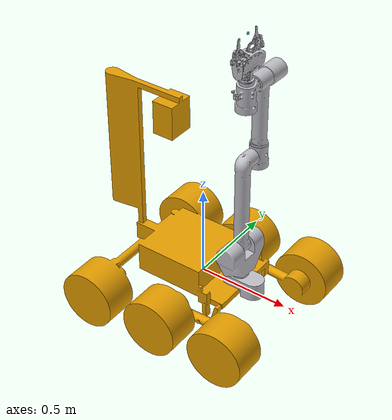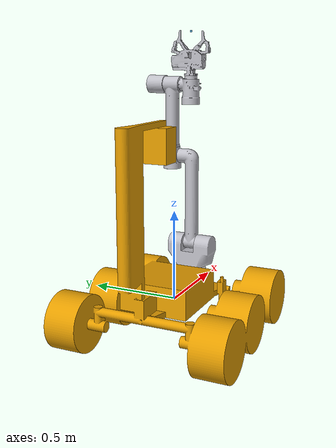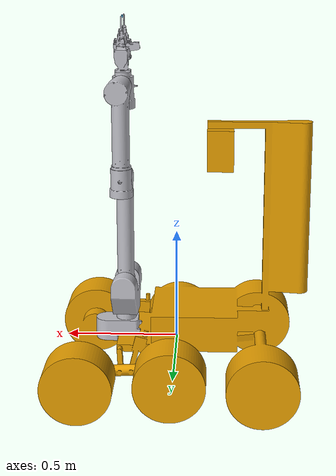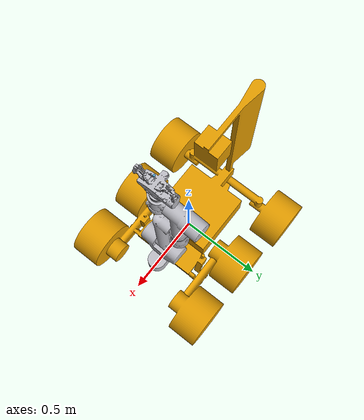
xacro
<?xml version="1.0"?>

<!--
Urdf for the rover of the DAM Robotics Rover triple bogie system.
-->

<robot name="rover" xmlns:xacro="https://ros.org/wiki/xacro">
    <xacro:macro name="rover" params="name attachment:=arm">
        <!-- Includes (material libraries, etc) -->
        <xacro:include filename="$(find rover_arm_urdf)/urdf/rover2_arm.urdf.xacro" />
        <xacro:include filename="rover_body.urdf.xacro"/>

        <!-- Link Chasis with bogies and tower -->
        <xacro:rover_body name="rover_body">
        </xacro:rover_body>

        <!-- Link Arm or Scimech-->
        <xacro:if value="${attachment== 'arm'}">
            <xacro:rover2_arm parent="rover_base_origin" >
                <origin rpy= "0.0 0.0 0.0" xyz="0.175735 0 0.03175"/>
            </xacro:rover2_arm>
        </xacro:if>

        <xacro:if value="${attachment == 'science'}">

        </xacro:if>

            <!-- Arm option for gripper -->
    </xacro:macro>

    <xacro:rover name="rover" attachment="arm"/>

</robot>

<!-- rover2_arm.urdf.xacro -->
<robot name="rover2_arm" xmlns:xacro="http://www.ros.org/wiki/xacro">
  <xacro:macro name="rover2_arm" params="parent *origin name:=rover_arm" >

    <link name="${name}_base_link">
      <inertial>
        <origin xyz="0.08371 -0.000083675 0.03944" rpy="0 0 -1.5708"/>
        <mass value="1.9803212654096218"/>
        <inertia ixx="0.003734" iyy="0.007149" izz="0.007073" ixy="1.085e-06" iyz="-3.675e-06" ixz="0.001344"/>
      </inertial>
      <visual>
        <origin xyz="0 0 0" rpy="0 0 -1.5708"/>
        <geometry>
          <mesh filename="package://rover_arm_urdf/urdf/stl_files/mr2526-arm-Base_Link-URDF_Mass.stl" scale="0.001 0.001 0.001"/>
        </geometry>
        <material name="silver"/>
      </visual>
      <collision>
        <origin xyz="0 0 0" rpy="0 0 -1.5708"/>
        <geometry>
          <mesh filename="package://rover_arm_urdf/urdf/stl_files/mr2526-arm-Base_Collision.stl" scale="0.001 0.001 0.001"/>
        </geometry>
      </collision>
    </link>

    <link name="${name}_shoulder">
      <inertial>
        <origin xyz="0.0094258 0.0003306 0.11444" rpy="0 0 0"/>
        <mass value="4.597426515663195"/>
        <inertia ixx="0.017924" iyy="0.03421" izz="0.026905" ixy="0.000571" iyz="3.3e-05" ixz="0.000896"/>
      </inertial>
      <visual>
        <origin xyz="0.0 -0.055 -0.0865" rpy="0 0 0"/>
        <geometry>
          <mesh filename="package://rover_arm_urdf/urdf/stl_files/mr2526-arm-Shoulder_Link-URDF_Mass.stl" scale="0.001 0.001 0.001"/>
        </geometry>
        <material name="silver"/>
      </visual>
      <collision>
        <origin xyz="0.0 -0.055 -0.0865" rpy="0 0 0"/>
        <geometry>
          <mesh filename="package://rover_arm_urdf/urdf/stl_files/mr2526-arm-Shoulder_Collision.stl" scale="0.001 0.001 0.001"/>
        </geometry>
      </collision>
    </link>

    <link name="${name}_long_arm">
      <inertial>
        <origin xyz="-0.082265 -0.002920 0.304191" rpy="0 0 0"/>
        <mass value="1.931219575863863"/>
        <inertia ixx="0.102866" iyy="0.10401" izz="0.003018" ixy="-4.1e-05" iyz="0.00216" ixz="0.006075"/>
      </inertial>
      <visual>
        <origin xyz="-0.064949 -0.052429 -0.237943" rpy="0 0 0"/>
        <geometry>
          <mesh filename="package://rover_arm_urdf/urdf/stl_files/mr2526-arm-Long_Arm_Link-URDF_Mass.stl" scale="0.001 0.001 0.001"/>
        </geometry>
        <material name="silver"/>
      </visual>
      <collision>
        <origin xyz="-0.064949 -0.052429 -0.237943" rpy="0 0 0"/>
        <geometry>
          <mesh filename="package://rover_arm_urdf/urdf/stl_files/mr2526-arm-Long_Arm_Collision.stl" scale="0.001 0.001 0.001"/>
        </geometry>
      </collision>
    </link>

    <link name="${name}_elbow_roll">
      <inertial>
        <origin xyz="0.06296 -0.001884  0.002448" rpy="0 0 0"/>
        <mass value="1.6182387209715599"/>
        <inertia ixx="0.002582" iyy="0.002773" izz="0.001869" ixy="-5e-06" iyz="3.2e-05" ixz="7e-05"/>
      </inertial>
      <visual>
        <origin xyz="0.059204 -0.057343 -0.739926" rpy="0 0 0"/>
        <geometry>
          <mesh filename="package://rover_arm_urdf/urdf/stl_files/mr2526-arm-Elbow_Roll_Link-URDF_Mass.stl" scale="0.001 0.001 0.001"/>
        </geometry>
        <material name="silver"/>
      </visual>
      <collision>
        <origin xyz="0.059204 -0.057343 -0.739926" rpy="0 0 0"/>
        <geometry>
          <mesh filename="package://rover_arm_urdf/urdf/stl_files/mr2526-arm-Elbow_Roll_Collision.stl" scale="0.001 0.001 0.001"/>
        </geometry>
      </collision>
    </link>

    <link name="${name}_short_arm">
      <inertial>
        <origin xyz="-0.019578 -0.0008965 0.308656" rpy="0 0 0"/>
        <mass value="2.3532339025644338"/>
        <inertia ixx="0.024841" iyy="0.029375" izz="0.007124" ixy="-0.000127" iyz="8.7e-05" ixz="0.001874"/>
      </inertial>
      <visual>
        <origin xyz="0.124153 -0.059914 -0.790926" rpy="0 0 0"/>
        <geometry>
          <mesh filename="package://rover_arm_urdf/urdf/stl_files/mr2526-arm-Short_Arm_Link-URDF_Mass.stl" scale="0.001 0.001 0.001"/>
        </geometry>
        <material name="silver"/>
      </visual>
      <collision>
        <origin xyz="0.124153 -0.059914 -0.790926" rpy="0 0 0"/>
        <geometry>
          <mesh filename="package://rover_arm_urdf/urdf/stl_files/mr2526-arm-Short_Arm_Collision.stl" scale="0.001 0.001 0.001"/>
        </geometry>
      </collision>
    </link>

    <link name="${name}_wrist_roll">
      <inertial>
        <origin xyz="0.048557 0.002168 -0.03599" rpy="0 0 0"/>
        <mass value="1.3442681899530171"/>
        <inertia ixx="0.002484" iyy="0.002597" izz="0.001636" ixy="8e-06" iyz="4.8e-05" ixz="8.1e-05"/>
      </inertial>
      <visual>
        <origin xyz="0.059204 -0.057343 -1.139326" rpy="0 0 0"/>
        <geometry>
          <mesh filename="package://rover_arm_urdf/urdf/stl_files/mr2526-arm-Wrist_Roll_Link-URDF-Mass.stl" scale="0.001 0.001 0.001"/>
        </geometry>
        <material name="silver"/>
      </visual>
      <collision>
        <origin xyz="0.059204 -0.057343 -1.139326" rpy="0 0 0"/>
        <geometry>
          <mesh filename="package://rover_arm_urdf/urdf/stl_files/mr2526-arm-Wrist_Roll_Collision.stl" scale="0.001 0.001 0.001"/>
        </geometry>
      </collision>
    </link>

    <link name="${name}_tool0">
      <inertial>
        <origin xyz="-0.00042542 0.00016296 0.016355" rpy="0 0 0"/>
        <mass value="0.09744608224670866"/>
        <inertia ixx="3.3e-05" iyy="3.3e-05" izz="5.6e-05" ixy="0.0" iyz="0.0" ixz="0.0"/>
      </inertial>
      <visual>
        <origin xyz="0.009243 -0.055366 -1.165364" rpy="0 0 0"/>
        <geometry>
          <mesh filename="package://rover_arm_urdf/urdf/stl_files/mr2526-arm-Tool0-URDF_Mass.stl" scale="0.001 0.001 0.001"/>
        </geometry>
        <material name="silver"/>
      </visual>
      <collision>
        <origin xyz="0.009243 -0.055366 -1.165364" rpy="0 0 0"/>
        <geometry>
          <mesh filename="package://rover_arm_urdf/urdf/stl_files/mr2526-arm-Tool0_Collision.stl" scale="0.001 0.001 0.001"/>
        </geometry>
      </collision>
    </link>

    <link name="${name}_gripper">
      <inertial>
        <origin xyz="0.00054881 -0.003385 0.09155" rpy="0 0 0"/>
        <mass value="1.436142089281915"/>
        <inertia ixx="0.004268" iyy="0.006284" izz="0.003365" ixy="-0.000106" iyz="0.000102" ixz="0.00012"/>
      </inertial>
      <visual>
        <origin xyz="0.01459598 -0.05420133 -1.189494" rpy="0 0 0.097633718357"/>
        <geometry>
          <mesh filename="package://rover_arm_urdf/urdf/stl_files/mr2526-arm-Gripper-2019-URDF_Mass.stl" scale="0.001 0.001 0.001"/>
        </geometry>
        <material name="silver"/>
      </visual>
      <collision>
        <origin xyz="0 0 0" rpy="1.570796632679 0 3.141592653589793"/>
        <geometry>
          <mesh filename="package://rover_arm_urdf/urdf/stl_files/arm_1819_gripper.stl" scale="0.001 0.001 0.001"/>
        </geometry>
      </collision>
    </link>

    <link name="${name}_jaws_link">
      <visual>
        <origin rpy="0 0 0" xyz="0 0 0"/>
        <geometry>
          <cylinder radius="0.005" length="0.01"/>
        </geometry>
      </visual>
    </link>

    <joint name="${name}_body_joint" type="fixed">
      <parent link="${parent}"/>
      <child link="${name}_base_link"/>
      <xacro:insert_block name="origin"/>
    </joint>

    <joint name="${name}_base_joint" type="revolute">
      <origin xyz="0.055 0.0 0.08648" rpy="0 0 -1.5708"/>
      <parent link="${name}_base_link"/>
      <child link="${name}_shoulder"/>
      <axis xyz="0.0 0.0 -1.0"/>
      <limit upper="3.1416" lower="-3.1416" effort="100" velocity="0.565478"/>
    </joint>

    <joint name="${name}_shoulder_joint" type="revolute">
      <origin xyz="0.064949 -0.002571 0.151443" rpy="0 0 0"/>
      <parent link="${name}_shoulder"/>
      <child link="${name}_long_arm"/>
      <axis xyz="1.0 0.0 0.0"/>
      <limit upper="1.570796" lower="-1.570796" effort="100" velocity="0.353429"/>
    </joint>

    <joint name="${name}_elbow_pitch_joint" type="revolute">
      <origin xyz="-0.124153 0.004914 0.501983" rpy="0 0 0"/>
      <parent link="${name}_long_arm"/>
      <child link="${name}_elbow_roll"/>
      <axis xyz="1.0 0.0 0.0"/>
      <limit upper="3.141593" lower="-3.141593" effort="100" velocity="0.604799"/>
    </joint>

    <joint name="${name}_elbow_roll_joint" type="revolute">
      <origin xyz="-0.064949 0.002571 0.051" rpy="0 0 0"/>
      <parent link="${name}_elbow_roll"/>
      <child link="${name}_short_arm"/>
      <axis xyz="0.0 0.0 -1.0"/>
      <limit upper="3.141593" lower="-3.141593" effort="100" velocity="1.884956"/>
    </joint>

    <joint name="${name}_wrist_pitch_joint" type="revolute">
      <origin xyz="0.064949 -0.002571 0.34838" rpy="0 0 0"/>
      <parent link="${name}_short_arm"/>
      <child link="${name}_wrist_roll"/>
      <axis xyz="1.0 0.0 0.0"/>
      <limit upper="3.141593" lower="-3.141593" effort="100" velocity="0.611337"/>
    </joint>

    <joint name="${name}_wrist_roll_joint" type="continuous">
      <origin xyz="0.049961 -0.001978 0.026058" rpy="0 0 0"/>
      <parent link="${name}_wrist_roll"/>
      <child link="${name}_tool0"/>
      <axis xyz="0.0 0.0 1.0"/>
      <limit effort="100" velocity="2.261947"/>
    </joint>

    <joint name="${name}_gripper_joint" type="fixed">
      <origin xyz="0.0 0.0 0.02413" rpy="0 0 0"/>
      <parent link="${name}_tool0"/>
      <child link="${name}_gripper"/>
    </joint>

    <joint name="${name}_gripper_jaws" type="fixed">
      <parent link = "${name}_gripper"/>
      <child link = "${name}_jaws_link"/>
      <origin rpy="0 0 0" xyz="0 0 0.236"/>
    </joint>

  </xacro:macro>
</robot>

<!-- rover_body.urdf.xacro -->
<!--
Urdf of the rovers chassis and bogies
-->
<robot name="rover_body" xmlns:xacro="https://ros.org/wiki/xacro">
    <xacro:macro name="rover_body" params="name">
        <link name="rover_base_origin">
            <visual>
                <origin rpy="0 0 1.5708" xyz="0.26035 0 0"/>
                <geometry>
                <mesh filename="package://rover_urdf/urdf/stl_files/rover_body.stl" scale="0.001 0.001 0.001"/>
                </geometry>
            </visual>
            <collision>
                <origin rpy="0 0 1.5708" xyz="0.26035 0 0"/>
                <geometry>
                <mesh filename="package://rover_urdf/urdf/stl_files/rover_body.stl" scale="0.001 0.001 0.001"/>
                </geometry>
            </collision>
        </link>
    </xacro:macro>
</robot>
